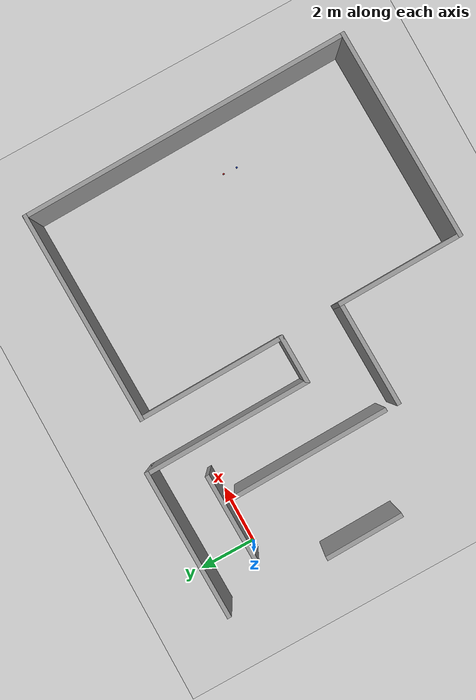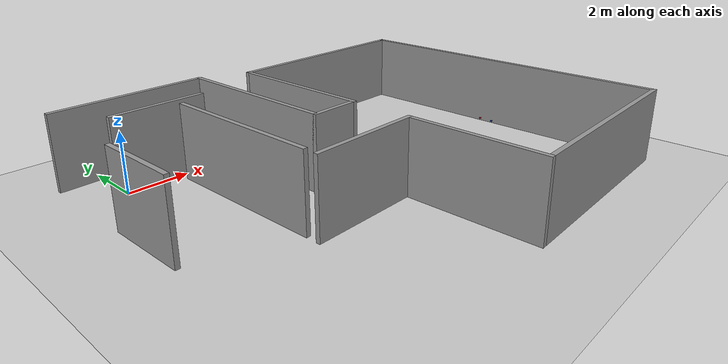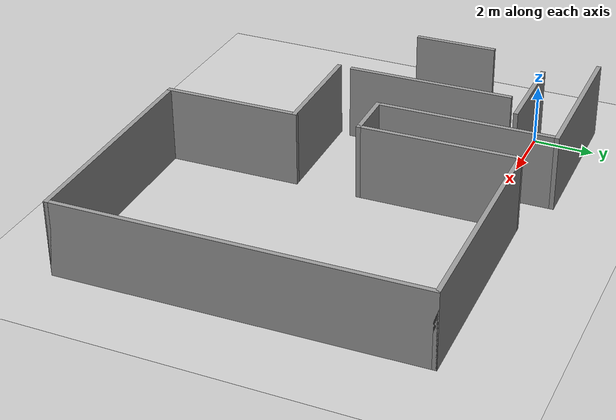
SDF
<sdf version="1.7">
 <world name="default">
  <include><uri>model://ground_plane</uri></include>
  <include><uri>model://sun</uri></include>
  <light name="spot_light" type="spot">
   <pose>0 0 25 0 -0 0</pose>
   <diffuse>1 1 1 1</diffuse>
   <specular>1 1 1 1</specular>
   <direction>0 0 -1</direction>
   <attenuation>
    <range>100</range>
    <constant>0.1</constant>
    <linear>0.01</linear>
    <quadratic>0.001</quadratic>
   </attenuation>
   <cast_shadows>0</cast_shadows>
   <spot><inner_angle>0.9</inner_angle><outer_angle>1.5</outer_angle><falloff>1</falloff></spot>
  </light>
  <model name="red_cube">
   <link name="link_2">
    <inertial>
     <mass>0.009375</mass>
     <inertia>
      <ixx>3.91e-06</ixx>
      <ixy>0</ixy>
      <ixz>0</ixz>
      <iyy>3.91e-06</iyy>
      <iyz>0</iyz>
      <izz>3.91e-06</izz>
     </inertia>
    </inertial>
    <visual name="visual">
     <geometry><box><size>0.05 0.05 0.05</size></box></geometry>
     <material>
      <lighting>1</lighting>
      <script><uri>file://media/materials/scripts/gazebo.material</uri><name>Gazebo/Red</name></script>
      <ambient>1 0 0 1</ambient>
      <diffuse>1 0 0 1</diffuse>
      <specular>1 0 0 1</specular>
      <emissive>0 0 0 1</emissive>
      <shader type="vertex"><normal_map>__default__</normal_map></shader>
     </material>
    </visual>
    <collision name="collision">
     <geometry><box><size>0.05 0.05 0.05</size></box></geometry>
     <surface>
      <friction>
       <ode><mu>1</mu><mu2>1</mu2><fdir1>0 0 0</fdir1><slip1>0</slip1><slip2>0</slip2></ode>
       <torsional>
        <coefficient>1</coefficient>
        <patch_radius>0</patch_radius>
        <surface_radius>0</surface_radius>
        <use_patch_radius>1</use_patch_radius>
        <ode><slip>0</slip></ode>
       </torsional>
      </friction>
      <bounce><restitution_coefficient>0</restitution_coefficient><threshold>1e+06</threshold></bounce>
      <contact>
       <collide_without_contact>0</collide_without_contact>
       <collide_without_contact_bitmask>1</collide_without_contact_bitmask>
       <collide_bitmask>1</collide_bitmask>
       <ode>
        <soft_cfm>0</soft_cfm>
        <soft_erp>0.2</soft_erp>
        <kp>1e+13</kp>
        <kd>1</kd>
        <max_vel>0.01</max_vel>
        <min_depth>0</min_depth>
       </ode>
       <bullet>
        <split_impulse>1</split_impulse>
        <split_impulse_penetration_threshold>-0.01</split_impulse_penetration_threshold>
        <soft_cfm>0</soft_cfm>
        <soft_erp>0.2</soft_erp>
        <kp>1e+13</kp>
        <kd>1</kd>
       </bullet>
      </contact>
     </surface>
    </collision>
   </link>
   <static>0</static>
   <pose>11.2274 -5.05422 0.72 0 -0 -1.1e-05</pose>
  </model>
  <model name="blue_cube">
   <link name="link_2">
    <inertial>
     <mass>0.009375</mass>
     <inertia>
      <ixx>3.91e-06</ixx>
      <ixy>0</ixy>
      <ixz>0</ixz>
      <iyy>3.91e-06</iyy>
      <iyz>0</iyz>
      <izz>3.91e-06</izz>
     </inertia>
    </inertial>
    <visual name="visual">
     <geometry><box><size>0.05 0.05 0.05</size></box></geometry>
     <material>
      <lighting>1</lighting>
      <script><uri>file://media/materials/scripts/gazebo.material</uri><name>Gazebo/Blue</name></script>
      <ambient>0 0 1 1</ambient>
      <diffuse>0 0 1 1</diffuse>
      <specular>0 0 1 1</specular>
      <emissive>0 0 0 1</emissive>
      <shader type="vertex"><normal_map>__default__</normal_map></shader>
     </material>
    </visual>
    <collision name="collision">
     <geometry><box><size>0.05 0.05 0.05</size></box></geometry>
     <surface>
      <friction>
       <ode><mu>1</mu><mu2>1</mu2><fdir1>0 0 0</fdir1><slip1>0</slip1><slip2>0</slip2></ode>
       <torsional>
        <coefficient>1</coefficient>
        <patch_radius>0</patch_radius>
        <surface_radius>0</surface_radius>
        <use_patch_radius>1</use_patch_radius>
        <ode><slip>0</slip></ode>
       </torsional>
      </friction>
      <bounce><restitution_coefficient>0</restitution_coefficient><threshold>1e+06</threshold></bounce>
      <contact>
       <collide_without_contact>0</collide_without_contact>
       <collide_without_contact_bitmask>1</collide_without_contact_bitmask>
       <collide_bitmask>1</collide_bitmask>
       <ode>
        <soft_cfm>0</soft_cfm>
        <soft_erp>0.2</soft_erp>
        <kp>1e+13</kp>
        <kd>1</kd>
        <max_vel>0.01</max_vel>
        <min_depth>0</min_depth>
       </ode>
       <bullet>
        <split_impulse>1</split_impulse>
        <split_impulse_penetration_threshold>-0.01</split_impulse_penetration_threshold>
        <soft_cfm>0</soft_cfm>
        <soft_erp>0.2</soft_erp>
        <kp>1e+13</kp>
        <kd>1</kd>
       </bullet>
      </contact>
     </surface>
    </collision>
   </link>
   <static>0</static>
   <pose>11.2054 -5.54395 0.72 0 -0 -1.1e-05</pose>
  </model>
  <gravity>0 0 -9.8</gravity>
  <magnetic_field>6e-06 2.3e-05 -4.2e-05</magnetic_field>
  <atmosphere type="adiabatic"/>
  <physics name="default_physics" default="0" type="ode">
   <max_step_size>0.001</max_step_size>
   <real_time_factor>1</real_time_factor>
   <real_time_update_rate>1000</real_time_update_rate>
  </physics>
  <scene><ambient>0.4 0.4 0.4 1</ambient><background>0.7 0.7 0.7 1</background><shadows>1</shadows></scene>
  <audio><device>default</device></audio>
  <spherical_coordinates>
   <surface_model>EARTH_WGS84</surface_model>
   <latitude_deg>0</latitude_deg>
   <longitude_deg>0</longitude_deg>
   <elevation>0</elevation>
   <heading_deg>0</heading_deg>
  </spherical_coordinates>
  <model name="building">
   <pose>4.69731 -4.41095 0 0 -0 -1.5515</pose>
   <link name="Wall_0">
    <collision name="Wall_0_Collision">
     <geometry><box><size>5.25 0.15 2.5</size></box></geometry>
     <pose>0 0 1.25 0 -0 0</pose>
    </collision>
    <visual name="Wall_0_Visual">
     <pose>0 0 1.25 0 -0 0</pose>
     <geometry><box><size>5.25 0.15 2.5</size></box></geometry>
     <material>
      <script><uri>file://media/materials/scripts/gazebo.material</uri><name>Gazebo/Grey</name></script>
      <ambient>1 1 1 1</ambient>
     </material>
     <meta><layer>0</layer></meta>
    </visual>
    <pose>-2.9 0.85 0 0 -0 3.14159</pose>
   </link>
   <link name="Wall_1">
    <collision name="Wall_1_Collision">
     <geometry><box><size>7.5 0.15 2.5</size></box></geometry>
     <pose>0 0 1.25 0 -0 0</pose>
    </collision>
    <visual name="Wall_1_Visual">
     <pose>0 0 1.25 0 -0 0</pose>
     <geometry><box><size>7.5 0.15 2.5</size></box></geometry>
     <material>
      <script><uri>file://media/materials/scripts/gazebo.material</uri><name>Gazebo/Grey</name></script>
      <ambient>1 1 1 1</ambient>
     </material>
     <meta><layer>0</layer></meta>
    </visual>
    <pose>-5.45 4.525 0 0 -0 1.5708</pose>
   </link>
   <link name="Wall_12">
    <collision name="Wall_12_Collision">
     <geometry><box><size>2.75 0.15 2.5</size></box></geometry>
     <pose>0 0 1.25 0 -0 0</pose>
    </collision>
    <visual name="Wall_12_Visual">
     <pose>0 0 1.25 0 -0 0</pose>
     <geometry><box><size>2.75 0.15 2.5</size></box></geometry>
     <material>
      <script><uri>file://media/materials/scripts/gazebo.material</uri><name>Gazebo/Grey</name></script>
      <ambient>1 1 1 1</ambient>
     </material>
     <meta><layer>0</layer></meta>
    </visual>
    <pose>-1.225 -5.85 0 0 -0 3.14159</pose>
   </link>
   <link name="Wall_13">
    <collision name="Wall_13_Collision">
     <geometry><box><size>5.25 0.15 2.5</size></box></geometry>
     <pose>0 0 1.25 0 -0 0</pose>
    </collision>
    <visual name="Wall_13_Visual">
     <pose>0 0 1.25 0 -0 0</pose>
     <geometry><box><size>5.25 0.15 2.5</size></box></geometry>
     <material>
      <script><uri>file://media/materials/scripts/gazebo.material</uri><name>Gazebo/Grey</name></script>
      <ambient>1 1 1 1</ambient>
     </material>
     <meta><layer>0</layer></meta>
    </visual>
    <pose>-6.15 -3.3 0 0 -0 1.5708</pose>
   </link>
   <link name="Wall_14">
    <collision name="Wall_14_Collision">
     <geometry><box><size>5.95 0.15 2.5</size></box></geometry>
     <pose>0 0 1.25 0 -0 0</pose>
    </collision>
    <visual name="Wall_14_Visual">
     <pose>0 0 1.25 0 -0 0</pose>
     <geometry><box><size>5.95 0.15 2.5</size></box></geometry>
     <material>
      <script><uri>file://media/materials/scripts/gazebo.material</uri><name>Gazebo/Grey</name></script>
      <ambient>1 1 1 1</ambient>
     </material>
     <meta><layer>0</layer></meta>
    </visual>
    <pose>-3.25 -0.75 0 0 -0 0</pose>
   </link>
   <link name="Wall_15">
    <collision name="Wall_15_Collision">
     <geometry><box><size>1.75 0.15 2.5</size></box></geometry>
     <pose>0 0 1.25 0 -0 0</pose>
    </collision>
    <visual name="Wall_15_Visual">
     <pose>0 0 1.25 0 -0 0</pose>
     <geometry><box><size>1.75 0.15 2.5</size></box></geometry>
     <material>
      <script><uri>file://media/materials/scripts/gazebo.material</uri><name>Gazebo/Grey</name></script>
      <ambient>1 1 1 1</ambient>
     </material>
     <meta><layer>0</layer></meta>
    </visual>
    <pose>-0.35 0.05 0 0 -0 1.5708</pose>
   </link>
   <link name="Wall_2">
    <collision name="Wall_2_Collision">
     <geometry><box><size>11.75 0.15 2.5</size></box></geometry>
     <pose>0 0 1.25 0 -0 0</pose>
    </collision>
    <visual name="Wall_2_Visual">
     <pose>0 0 1.25 0 -0 0</pose>
     <geometry><box><size>11.75 0.15 2.5</size></box></geometry>
     <material>
      <script><uri>file://media/materials/scripts/gazebo.material</uri><name>Gazebo/Grey</name></script>
      <ambient>1 1 1 1</ambient>
     </material>
     <meta><layer>0</layer></meta>
    </visual>
    <pose>0.35 8.2 0 0 -0 0</pose>
   </link>
   <link name="Wall_3">
    <collision name="Wall_3_Collision">
     <geometry><box><size>7.5 0.15 2.5</size></box></geometry>
     <pose>0 0 1.25 0 -0 0</pose>
    </collision>
    <visual name="Wall_3_Visual">
     <pose>0 0 1.25 0 -0 0</pose>
     <geometry><box><size>7.5 0.15 2.5</size></box></geometry>
     <material>
      <script><uri>file://media/materials/scripts/gazebo.material</uri><name>Gazebo/Grey</name></script>
      <ambient>1 1 1 1</ambient>
     </material>
     <meta><layer>0</layer></meta>
    </visual>
    <pose>6.15 4.525 0 0 -0 -1.5708</pose>
   </link>
   <link name="Wall_4">
    <collision name="Wall_4_Collision">
     <geometry><box><size>4.5 0.15 2.5</size></box></geometry>
     <pose>0 0 1.25 0 -0 0</pose>
    </collision>
    <visual name="Wall_4_Visual">
     <pose>0 0 1.25 0 -0 0</pose>
     <geometry><box><size>4.5 0.15 2.5</size></box></geometry>
     <material>
      <script><uri>file://media/materials/scripts/gazebo.material</uri><name>Gazebo/Grey</name></script>
      <ambient>1 1 1 1</ambient>
     </material>
     <meta><layer>0</layer></meta>
    </visual>
    <pose>3.975 0.85 0 0 -0 3.14159</pose>
   </link>
   <link name="Wall_5">
    <collision name="Wall_5_Collision">
     <geometry><box><size>3.75 0.15 2.5</size></box></geometry>
     <pose>0 0 1.25 0 -0 0</pose>
    </collision>
    <visual name="Wall_5_Visual">
     <pose>0 0 1.25 0 -0 0</pose>
     <geometry><box><size>3.75 0.15 2.5</size></box></geometry>
     <material>
      <script><uri>file://media/materials/scripts/gazebo.material</uri><name>Gazebo/Grey</name></script>
      <ambient>1 1 1 1</ambient>
     </material>
     <meta><layer>0</layer></meta>
    </visual>
    <pose>1.8 -0.95 0 0 -0 -1.5708</pose>
   </link>
   <link name="Wall_6">
    <collision name="Wall_6_Collision">
     <geometry><box><size>5.5 0.15 2.5</size></box></geometry>
     <pose>0 0 1.25 0 -0 0</pose>
    </collision>
    <visual name="Wall_6_Visual">
     <pose>0 0 1.25 0 -0 0</pose>
     <geometry><box><size>5.5 0.15 2.5</size></box></geometry>
     <material>
      <script><uri>file://media/materials/scripts/gazebo.material</uri><name>Gazebo/Grey</name></script>
      <ambient>1 1 1 1</ambient>
     </material>
     <meta><layer>0</layer></meta>
    </visual>
    <pose>-1.375 -2.75 0 0 -0 3.14159</pose>
   </link>
   <link name="Wall_7">
    <collision name="Wall_7_Collision">
     <geometry><box><size>3.15 0.15 2.5</size></box></geometry>
     <pose>0 0 1.25 0 -0 0</pose>
    </collision>
    <visual name="Wall_7_Visual">
     <pose>0 0 1.25 0 -0 0</pose>
     <geometry><box><size>3.15 0.15 2.5</size></box></geometry>
     <material>
      <script><uri>file://media/materials/scripts/gazebo.material</uri><name>Gazebo/Grey</name></script>
      <ambient>1 1 1 1</ambient>
     </material>
     <meta><layer>0</layer></meta>
    </visual>
    <pose>-4.55 -3.3 0 0 -0 -1.5708</pose>
   </link>
   <static>1</static>
  </model>
 </world>
</sdf>
